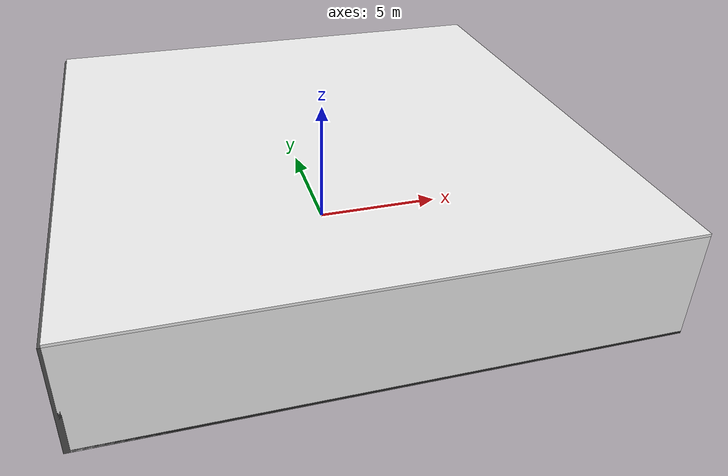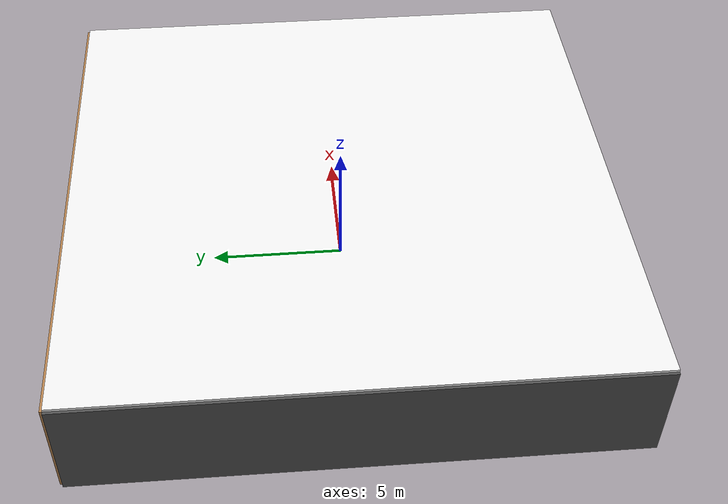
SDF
<sdf version="1.4">
 <world name="default">
  <physics type="ode">
   <max_step_size>0.001</max_step_size>
   <real_time_factor>1</real_time_factor>
   <real_time_update_rate>1000</real_time_update_rate>
   <gravity>0 0 -9.8</gravity>
  </physics>
  <scene><ambient>0.4 0.4 0.4 1</ambient><background>0.7 0.7 0.7 1</background><shadows>1</shadows></scene>
  <model name="Surrounding">
   <static>1</static>
   <link name="Ceiling">
    <collision name="Ceiling_Collision"><geometry><box><size>20 20 0.1</size></box></geometry></collision>
    <visual name="Ceiling_Visual">
     <geometry><box><size>20 20 0.1</size></box></geometry>
     <material>
      <script><uri>file://media/materials/scripts/gazebo.material</uri><name>Gazebo/WhiteGlow</name></script>
     </material>
    </visual>
    <pose>0 0 4.05 0 0 0</pose>
   </link>
   <link name="Wall_South">
    <collision name="Wall_South_Collision">
     <geometry><box><size>20 0 4</size></box></geometry>
     <pose>0 0 2 0 -0 0</pose>
    </collision>
    <visual name="Wall_South_Visual">
     <pose>0 0 2 0 -0 0</pose>
     <geometry><box><size>20 0 4</size></box></geometry>
     <material>
      <script><uri>file://media/materials/scripts/gazebo.material</uri><name>Gazebo/WhiteGlow</name></script>
     </material>
    </visual>
    <velocity_decay><linear>0</linear><angular>0</angular></velocity_decay>
    <pose>0 -10 0 0 -0 0</pose>
   </link>
   <link name="Wall_East">
    <collision name="Wall_21_Collision">
     <geometry><box><size>20 0 4</size></box></geometry>
     <pose>0 0 2 0 -0 0</pose>
    </collision>
    <visual name="Wall_21_Visual">
     <pose>0 0 2 0 -0 0</pose>
     <geometry><box><size>20 0 4</size></box></geometry>
     <material>
      <script><uri>file://media/materials/scripts/gazebo.material</uri><name>Gazebo/GreyGradientSky</name></script>
     </material>
    </visual>
    <velocity_decay><linear>0</linear><angular>0</angular></velocity_decay>
    <pose>10 0 0 0 -0 1.5708</pose>
   </link>
   <link name="Wall_North">
    <collision name="Wall_22_Collision">
     <geometry><box><size>20 0.2 4</size></box></geometry>
     <pose>0 0 2 0 -0 0</pose>
    </collision>
    <visual name="Wall_22_Visual">
     <pose>0 0 2 0 -0 0</pose>
     <geometry><box><size>20 0.2 4</size></box></geometry>
     <material>
      <script><uri>file://media/materials/scripts/gazebo.material</uri><name>Gazebo/WoodPallet</name></script>
     </material>
    </visual>
    <velocity_decay><linear>0</linear><angular>0</angular></velocity_decay>
    <pose>0 10 0 0 -0 0</pose>
   </link>
   <link name="Wall_West">
    <collision name="Wall_23_Collision">
     <geometry><box><size>20 0.2 4</size></box></geometry>
     <pose>0 0 2 0 -0 0</pose>
    </collision>
    <visual name="Wall_23_Visual">
     <pose>0 0 2 0 -0 0</pose>
     <geometry><box><size>20 0.2 4</size></box></geometry>
     <material>
      <script><uri>file://media/materials/scripts/gazebo.material</uri><name>Gazebo/Road</name></script>
     </material>
    </visual>
    <velocity_decay><linear>0</linear><angular>0</angular></velocity_decay>
    <pose>-10 0 0 0 0 -1.5708</pose>
   </link>
   <link name="Ground_link">
    <collision name="collision">
     <pose>0 0 .05 0 -0 0</pose>
     <geometry><box><size>20 20 0.1</size></box></geometry>
    </collision>
    <visual name="visual">
     <pose>0 0 .05 0 -0 0</pose>
     <geometry><box><size>20 20 0.1</size></box></geometry>
     <material>
      <script><uri>file://media/materials/scripts/gazebo.material</uri><name>Gazebo/Black</name></script>
     </material>
    </visual>
   </link>
   <static>1</static>
  </model>
  <spherical_coordinates>
   <surface_model>EARTH_WGS84</surface_model>
   <latitude_deg>0</latitude_deg>
   <longitude_deg>0</longitude_deg>
   <elevation>0</elevation>
   <heading_deg>0</heading_deg>
  </spherical_coordinates>
  <light name="lightball_0" type="diffuse">
   <diffuse>0.8 0.8 0.8 1</diffuse>
   <specular>0.2 0.2 0.2 1</specular>
   <attenuation>
    <range>100</range>
    <constant>0.7</constant>
    <linear>0.01</linear>
    <quadratic>0.001</quadratic>
   </attenuation>
   <direction>-0.5 0.1 -0.9</direction>
   <pose>7.68306189566 0.389990639358 1.60225860614 0 0 0</pose>
  </light>
  <light name="lightball_1" type="diffuse">
   <diffuse>0.8 0.8 0.8 1</diffuse>
   <specular>0.2 0.2 0.2 1</specular>
   <attenuation>
    <range>100</range>
    <constant>0.7</constant>
    <linear>0.01</linear>
    <quadratic>0.001</quadratic>
   </attenuation>
   <direction>-0.5 0.1 -0.9</direction>
   <pose>-2.84632215002 -8.2699157262 2.25479142974 0 0 0</pose>
  </light>
  <light name="lightball_2" type="diffuse">
   <diffuse>0.8 0.8 0.8 1</diffuse>
   <specular>0.2 0.2 0.2 1</specular>
   <attenuation>
    <range>100</range>
    <constant>0.7</constant>
    <linear>0.01</linear>
    <quadratic>0.001</quadratic>
   </attenuation>
   <direction>-0.5 0.1 -0.9</direction>
   <pose>-7.83896884095 -4.87261109532 1.39644181603 0 0 0</pose>
  </light>
  <light name="lightball_3" type="diffuse">
   <diffuse>0.8 0.8 0.8 1</diffuse>
   <specular>0.2 0.2 0.2 1</specular>
   <attenuation>
    <range>100</range>
    <constant>0.7</constant>
    <linear>0.01</linear>
    <quadratic>0.001</quadratic>
   </attenuation>
   <direction>-0.5 0.1 -0.9</direction>
   <pose>-1.20373030564 -4.25683498897 1.35588036721 0 0 0</pose>
  </light>
  <light name="lightball_4" type="diffuse">
   <diffuse>0.8 0.8 0.8 1</diffuse>
   <specular>0.2 0.2 0.2 1</specular>
   <attenuation>
    <range>100</range>
    <constant>0.7</constant>
    <linear>0.01</linear>
    <quadratic>0.001</quadratic>
   </attenuation>
   <direction>-0.5 0.1 -0.9</direction>
   <pose>-6.41596190614 -9.37166143205 3.79536483648 0 0 0</pose>
  </light>
  <light name="lightball_5" type="diffuse">
   <diffuse>0.8 0.8 0.8 1</diffuse>
   <specular>0.2 0.2 0.2 1</specular>
   <attenuation>
    <range>100</range>
    <constant>0.7</constant>
    <linear>0.01</linear>
    <quadratic>0.001</quadratic>
   </attenuation>
   <direction>-0.5 0.1 -0.9</direction>
   <pose>-0.156956043447 7.30580399016 1.77127879994 0 0 0</pose>
  </light>
  <light name="lightball_6" type="diffuse">
   <diffuse>0.8 0.8 0.8 1</diffuse>
   <specular>0.2 0.2 0.2 1</specular>
   <attenuation>
    <range>100</range>
    <constant>0.7</constant>
    <linear>0.01</linear>
    <quadratic>0.001</quadratic>
   </attenuation>
   <direction>-0.5 0.1 -0.9</direction>
   <pose>-8.33037093759 9.92049128212 3.45528189729 0 0 0</pose>
  </light>
  <light name="lightball_7" type="diffuse">
   <diffuse>0.8 0.8 0.8 1</diffuse>
   <specular>0.2 0.2 0.2 1</specular>
   <attenuation>
    <range>100</range>
    <constant>0.7</constant>
    <linear>0.01</linear>
    <quadratic>0.001</quadratic>
   </attenuation>
   <direction>-0.5 0.1 -0.9</direction>
   <pose>6.07050530859 -5.79237639174 1.21572088886 0 0 0</pose>
  </light>
  <light name="lightball_8" type="diffuse">
   <diffuse>0.8 0.8 0.8 1</diffuse>
   <specular>0.2 0.2 0.2 1</specular>
   <attenuation>
    <range>100</range>
    <constant>0.7</constant>
    <linear>0.01</linear>
    <quadratic>0.001</quadratic>
   </attenuation>
   <direction>-0.5 0.1 -0.9</direction>
   <pose>-1.01560205157 3.57327371407 2.12440304188 0 0 0</pose>
  </light>
  <light name="lightball_9" type="diffuse">
   <diffuse>0.8 0.8 0.8 1</diffuse>
   <specular>0.2 0.2 0.2 1</specular>
   <attenuation>
    <range>100</range>
    <constant>0.7</constant>
    <linear>0.01</linear>
    <quadratic>0.001</quadratic>
   </attenuation>
   <direction>-0.5 0.1 -0.9</direction>
   <pose>2.38792698501 -7.53567065367 2.81464792031 0 0 0</pose>
  </light>
  <include>
   <uri>model://textured_shapes</uri>
   <pose>-6.92840807783 -6.95062709161 0 0 0 0.64661323728</pose>
  </include>
  <include>
   <uri>model://construction_cone</uri>
   <pose>-1.15004690451 7.04081560297 0 0 0 0.914858324518</pose>
  </include>
  <include><uri>model://table</uri><pose>4.3417436011 5.09654649626 0 0 0 2.12239765931</pose></include>
  <include><uri>model://cabinet</uri><pose>3.87723186608 6.34912391557 0 0 0 2.87616818294</pose></include>
  <include><uri>model://cabinet</uri><pose>8.17406091768 -4.07338864405 0 0 0 2.35911891357</pose></include>
 </world>
</sdf>

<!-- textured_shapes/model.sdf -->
<sdf version="1.6">
  <model name="textured_shapes">
    <pose>0 0 0.5 0 0 0</pose>
    <link name="box">
      <pose>0 -1.5 0 0 0 0</pose>
      <collision name="collision">
        <geometry>
          <box>
            <size>1 1 1</size>
          </box>
        </geometry>
      </collision>
      <visual name="visual">
        <geometry>
          <box>
            <size>1 1 1</size>
          </box>
        </geometry>
        <material>
          <script>
            <uri>model://../model_source/models/textured_shapes/materials/scripts</uri>
            <uri>model://../model_source/models/textured_shapes/materials/textures</uri>
            <name>TexturedShape/Squares</name>
          </script>
        </material>
      </visual>
    </link>
    <link name="sphere">
      <collision name="collision">
        <geometry>
          <sphere>
            <radius>0.5</radius>
          </sphere>
        </geometry>
      </collision>
      <visual name="visual">
        <geometry>
          <sphere>
            <radius>0.5</radius>
          </sphere>
        </geometry>
        <material>
          <script>
            <uri>model://../model_source/models/textured_shapes/materials/scripts</uri>
            <uri>model://../model_source/models/textured_shapes/materials/textures</uri>
            <name>TexturedShape/Squares</name>
          </script>
        </material>
      </visual>
    </link>
    <link name="cylinder">
      <pose>0 1.5 0 0 0 0</pose>
      <collision name="collision">
        <geometry>
          <cylinder>
            <radius>0.5</radius>
            <length>1</length>
          </cylinder>
        </geometry>
      </collision>
      <visual name="visual">
        <geometry>
          <cylinder>
            <radius>0.5</radius>
            <length>1</length>
          </cylinder>
        </geometry>
        <material>
          <script>
            <uri>model://../model_source/models/textured_shapes/materials/scripts</uri>
            <uri>model://../model_source/models/textured_shapes/materials/textures</uri>
            <name>TexturedShape/Squares</name>
          </script>
        </material>
      </visual>
    </link>
  </model>
</sdf>

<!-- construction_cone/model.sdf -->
<sdf version="1.5">
  <model name="Construction Cone">
    <link name="link">
      <collision name="collision">
        <geometry>
          <mesh>
            <scale>10 10 10</scale>
            <uri>file://isr-testbed/construction_cone/meshes/construction_cone.dae</uri>
          </mesh>
        </geometry>
      </collision>
      <visual name="visual">
        <geometry>
          <mesh>
            <scale>10 10 10</scale>
            <uri>file://isr-testbed/construction_cone/meshes/construction_cone.dae</uri>
          </mesh>
        </geometry>
      </visual>
    </link>
  </model>
</sdf>

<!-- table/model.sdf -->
<sdf version="1.5">
  <model name="table">
    <static>true</static>
    <link name="link">
      <collision name="surface">
        <pose>0 0 1.0 0 0 0</pose>
        <geometry>
          <box>
            <size>1.5 0.8 0.03</size>
          </box>
        </geometry>
        <surface>
          <friction>
            <ode>
              <mu>0.6</mu>
              <mu2>0.6</mu2>
            </ode>
          </friction>
        </surface>
      </collision>
      <visual name="visual1">
        <pose>0 0 1.0 0 0 0</pose>
        <geometry>
          <box>
            <size>1.5 0.8 0.03</size>
          </box>
        </geometry>
        <material>
          <script>
            <uri>model://media/materials/scripts/gazebo.material</uri>
            <name>Gazebo/Wood</name>
          </script>
        </material>
      </visual>
      <collision name="front_left_leg">
        <pose>0.68 0.38 0.5 0 0 0</pose>
        <geometry>
          <cylinder>
            <radius>0.02</radius>
            <length>1.0</length>
          </cylinder>
        </geometry>
      </collision>
      <visual name="front_left_leg">
        <pose>0.68 0.38 0.5 0 0 0</pose>
        <geometry>
          <cylinder>
            <radius>0.02</radius>
            <length>1.0</length>
          </cylinder>
        </geometry>
        <material>
          <script>
            <uri>model://media/materials/scripts/gazebo.material</uri>
            <name>Gazebo/Grey</name>
          </script>
        </material>
      </visual>
      <collision name="front_right_leg">
        <pose>0.68 -0.38 0.5 0 0 0</pose>
        <geometry>
          <cylinder>
            <radius>0.02</radius>
            <length>1.0</length>
          </cylinder>
        </geometry>
      </collision>
      <visual name="front_right_leg">
        <pose>0.68 -0.38 0.5 0 0 0</pose>
        <geometry>
          <cylinder>
            <radius>0.02</radius>
            <length>1.0</length>
          </cylinder>
        </geometry>
        <material>
          <script>
            <uri>model://media/materials/scripts/gazebo.material</uri>
            <name>Gazebo/Grey</name>
          </script>
        </material>
      </visual>
      <collision name="back_right_leg">
        <pose>-0.68 -0.38 0.5 0 0 0</pose>
        <geometry>
          <cylinder>
            <radius>0.02</radius>
            <length>1.0</length>
          </cylinder>
        </geometry>
      </collision>
      <visual name="back_right_leg">
        <pose>-0.68 -0.38 0.5 0 0 0</pose>
        <geometry>
          <cylinder>
            <radius>0.02</radius>
            <length>1.0</length>
          </cylinder>
        </geometry>
        <material>
          <script>
            <uri>model://media/materials/scripts/gazebo.material</uri>
            <name>Gazebo/Grey</name>
          </script>
        </material>
      </visual>
      <collision name="back_left_leg">
        <pose>-0.68 0.38 0.5 0 0 0</pose>
        <geometry>
          <cylinder>
            <radius>0.02</radius>
            <length>1.0</length>
          </cylinder>
        </geometry>
      </collision>
      <visual name="back_left_leg">
        <pose>-0.68 0.38 0.5 0 0 0</pose>
        <geometry>
          <cylinder>
            <radius>0.02</radius>
            <length>1.0</length>
          </cylinder>
        </geometry>
        <material>
          <script>
            <uri>model://media/materials/scripts/gazebo.material</uri>
            <name>Gazebo/Grey</name>
          </script>
        </material>
      </visual>
    </link>
  </model>
</sdf>

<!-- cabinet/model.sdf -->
<sdf version="1.5">
  <model name="cabinet">
    <static>true</static>
    <link name="cabinet_bottom_plate">
      <inertial>
        <pose>0 0 -1 0 0 0</pose>
        <inertia>
          <ixx>2.050000</ixx>
          <ixy>0</ixy>
          <ixz>0</ixz>
          <iyy>2.050000</iyy>
          <iyz>0</iyz>
          <izz>2.050000</izz>
        </inertia>
        <mass>25.000000</mass>
      </inertial>
      <collision name="cabinet_bottom_plate_geom">
        <pose>0 0 0.010000 0 0 0</pose>
        <geometry>
          <box>
            <size>0.450000 0.450000 0.020000</size>
          </box>
        </geometry>
      </collision>
      <visual name="cabinet_bottom_plate_geom_visual">
        <pose>0 0 0.010000 0 0 0</pose>
        <geometry>
          <box>
            <size>0.450000 0.450000 0.020000</size>
          </box>
        </geometry>
        <material>
          <script>
            <uri>model://media/materials/scripts/gazebo.material</uri>
            <name>Gazebo/Wood</name>
          </script>
        </material>
      </visual>
      <collision name="cabinet_bottom_plate_geom_cabinet_back_plate">
        <pose>0.235000 0 0.510000 0 0 0</pose>
        <geometry>
          <box>
            <size>0.020000 0.450000 1.020000</size>
          </box>
        </geometry>
      </collision>
      <visual name="cabinet_bottom_plate_geom_cabinet_back_plate_visual">
        <pose>0.235000 0 0.510000 0 0 0</pose>
        <geometry>
          <box>
            <size>0.020000 0.450000 1.020000</size>
          </box>
        </geometry>
        <material>
          <script>
            <uri>model://media/materials/scripts/gazebo.material</uri>
            <name>Gazebo/Wood</name>
          </script>
        </material>
      </visual>
      <collision name="cabinet_bottom_plate_geom_cabinet_left_plate">
        <pose>0 0.235000 0.510000 0 0 0</pose>
        <geometry>
          <box>
            <size>0.450000 0.020000 1.020000</size>
          </box>
        </geometry>
      </collision>
      <visual name="cabinet_bottom_plate_geom_cabinet_left_plate_visual">
        <pose>0 0.235000 0.510000 0 0 0</pose>
        <geometry>
          <box>
            <size>0.450000 0.020000 1.020000</size>
          </box>
        </geometry>
        <material>
          <script>
            <uri>model://media/materials/scripts/gazebo.material</uri>
            <name>Gazebo/Wood</name>
          </script>
        </material>
      </visual>
      <collision name="cabinet_bottom_plate_geom_cabinet_middle_plate">
        <pose>0 0 0.510000 0 0 0</pose>
        <geometry>
          <box>
            <size>0.450000 0.450000 0.020000</size>
          </box>
        </geometry>
      </collision>
      <visual name="cabinet_bottom_plate_geom_cabinet_middle_plate_visual">
        <pose>0 0 0.510000 0 0 0</pose>
        <geometry>
          <box>
            <size>0.450000 0.450000 0.020000</size>
          </box>
        </geometry>
        <material>
          <script>
            <uri>model://media/materials/scripts/gazebo.material</uri>
            <name>Gazebo/Wood</name>
          </script>
        </material>
      </visual>
      <collision name="cabinet_bottom_plate_geom_cabinet_right_plate">
        <pose>0 -0.235000 0.510000 0 0 0</pose>
        <geometry>
          <box>
            <size>0.450000 0.020000 1.020000</size>
          </box>
        </geometry>
      </collision>
      <visual name="cabinet_bottom_plate_geom_cabinet_right_plate_visual">
        <pose>0 -0.235000 0.510000 0 0 0</pose>
        <geometry>
          <box>
            <size>0.450000 0.020000 1.020000</size>
          </box>
        </geometry>
        <material>
          <script>
            <uri>model://media/materials/scripts/gazebo.material</uri>
            <name>Gazebo/Wood</name>
          </script>
        </material>
      </visual>
      <collision name="cabinet_bottom_plate_geom_cabinet_top_plate">
        <pose>0 0 1.010000 0 0 0</pose>
        <geometry>
          <box>
            <size>0.450000 0.450000 0.020000</size>
          </box>
        </geometry>
      </collision>
      <visual name="cabinet_bottom_plate_geom_cabinet_top_plate_visual">
        <pose>0 0 1.010000 0 0 0</pose>
        <geometry>
          <box>
            <size>0.450000 0.450000 0.020000</size>
          </box>
        </geometry>
        <material>
          <script>
            <uri>model://media/materials/scripts/gazebo.material</uri>
            <name>Gazebo/Wood</name>
          </script>
        </material>
      </visual>
    </link>
  </model>
</sdf>
